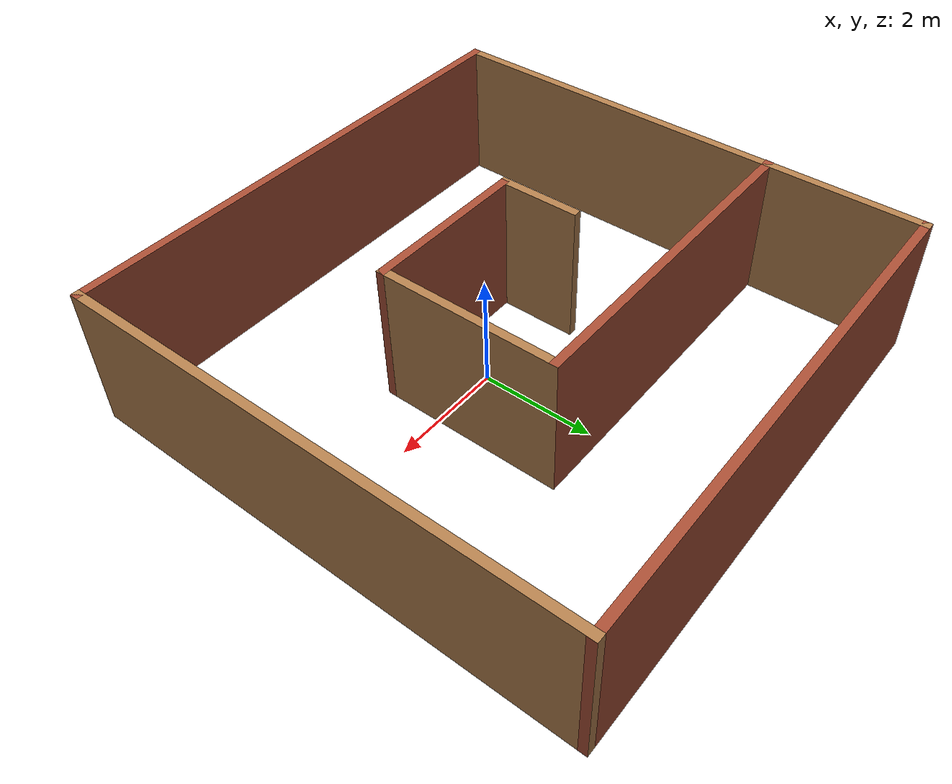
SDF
<?xml version='1.0'?>
<sdf version='1.7'>
  <model name='new_demo'>
    <pose>-0.2996 0.408875 0 0 -0 0</pose>
    <link name='Wall_13'>
      <collision name='Wall_13_Collision'>
        <geometry>
          <box>
            <size>9 0.15 2.5</size>
          </box>
        </geometry>
        <pose>0 0 1.25 0 -0 0</pose>
      </collision>
      <visual name='Wall_13_Visual'>
        <pose>0 0 1.25 0 -0 0</pose>
        <geometry>
          <box>
            <size>9 0.15 2.5</size>
          </box>
        </geometry>
        <material>
          <script>
            <uri>file://media/materials/scripts/gazebo.material</uri>
            <name>Gazebo/Wood</name>
          </script>
          <ambient>1 1 1 1</ambient>
        </material>
        <meta>
          <layer>0</layer>
        </meta>
      </visual>
      <pose>-4.42073 0 0 0 -0 -1.5708</pose>
    </link>
    <link name='Wall_14'>
      <collision name='Wall_14_Collision'>
        <geometry>
          <box>
            <size>9 0.15 2.5</size>
          </box>
        </geometry>
        <pose>0 0 1.25 0 -0 0</pose>
      </collision>
      <visual name='Wall_14_Visual'>
        <pose>0 0 1.25 0 -0 0</pose>
        <geometry>
          <box>
            <size>9 0.15 2.5</size>
          </box>
        </geometry>
        <material>
          <script>
            <uri>file://media/materials/scripts/gazebo.material</uri>
            <name>Gazebo/Bricks</name>
          </script>
          <ambient>1 1 1 1</ambient>
        </material>
        <meta>
          <layer>0</layer>
        </meta>
      </visual>
      <pose>0.004275 -4.425 0 0 -0 0</pose>
    </link>
    <link name='Wall_15'>
      <collision name='Wall_15_Collision'>
        <geometry>
          <box>
            <size>9 0.15 2.5</size>
          </box>
        </geometry>
        <pose>0 0 1.25 0 -0 0</pose>
      </collision>
      <visual name='Wall_15_Visual'>
        <pose>0 0 1.25 0 -0 0</pose>
        <geometry>
          <box>
            <size>9 0.15 2.5</size>
          </box>
        </geometry>
        <material>
          <script>
            <uri>file://media/materials/scripts/gazebo.material</uri>
            <name>Gazebo/Wood</name>
          </script>
          <ambient>1 1 1 1</ambient>
        </material>
        <meta>
          <layer>0</layer>
        </meta>
      </visual>
      <pose>4.42927 0 0 0 -0 1.5708</pose>
    </link>
    <link name='Wall_17'>
      <collision name='Wall_17_Collision'>
        <geometry>
          <box>
            <size>6 0.15 2.5</size>
          </box>
        </geometry>
        <pose>0 0 1.25 0 -0 0</pose>
      </collision>
      <visual name='Wall_17_Visual'>
        <pose>0 0 1.25 0 -0 0</pose>
        <geometry>
          <box>
            <size>6 0.15 2.5</size>
          </box>
        </geometry>
        <material>
          <script>
            <uri>file://media/materials/scripts/gazebo.material</uri>
            <name>Gazebo/Bricks</name>
          </script>
          <ambient>1 1 1 1</ambient>
        </material>
        <meta>
          <layer>0</layer>
        </meta>
      </visual>
      <pose>-1.50428 1.72713 0 0 -0 0</pose>
    </link>
    <link name='Wall_18'>
      <collision name='Wall_18_Collision'>
        <geometry>
          <box>
            <size>3.25 0.15 2.5</size>
          </box>
        </geometry>
        <pose>0 0 1.25 0 -0 0</pose>
      </collision>
      <visual name='Wall_18_Visual'>
        <pose>0 0 1.25 0 -0 0</pose>
        <geometry>
          <box>
            <size>3.25 0.15 2.5</size>
          </box>
        </geometry>
        <material>
          <script>
            <uri>file://media/materials/scripts/gazebo.material</uri>
            <name>Gazebo/Wood</name>
          </script>
          <ambient>1 1 1 1</ambient>
        </material>
        <meta>
          <layer>0</layer>
        </meta>
      </visual>
      <pose>1.42073 0.177125 0 0 -0 -1.5708</pose>
    </link>
    <link name='Wall_19'>
      <collision name='Wall_19_Collision'>
        <geometry>
          <box>
            <size>3 0.15 2.5</size>
          </box>
        </geometry>
        <pose>0 0 1.25 0 -0 0</pose>
      </collision>
      <visual name='Wall_19_Visual'>
        <pose>0 0 1.25 0 -0 0</pose>
        <geometry>
          <box>
            <size>3 0.15 2.5</size>
          </box>
        </geometry>
        <material>
          <script>
            <uri>file://media/materials/scripts/gazebo.material</uri>
            <name>Gazebo/Bricks</name>
          </script>
          <ambient>1 1 1 1</ambient>
        </material>
        <meta>
          <layer>0</layer>
        </meta>
      </visual>
      <pose>-0.004275 -1.37288 0 0 -0 3.14159</pose>
    </link>
    <link name='Wall_20'>
      <collision name='Wall_20_Collision'>
        <geometry>
          <box>
            <size>1.5 0.15 2.5</size>
          </box>
        </geometry>
        <pose>0 0 1.25 0 -0 0</pose>
      </collision>
      <visual name='Wall_20_Visual'>
        <pose>0 0 1.25 0 -0 0</pose>
        <geometry>
          <box>
            <size>1.5 0.15 2.5</size>
          </box>
        </geometry>
        <material>
          <script>
            <uri>file://media/materials/scripts/gazebo.material</uri>
            <name>Gazebo/Wood</name>
          </script>
          <ambient>1 1 1 1</ambient>
        </material>
        <meta>
          <layer>0</layer>
        </meta>
      </visual>
      <pose>-1.42928 -0.697875 0 0 -0 1.5708</pose>
    </link>
    <link name='Wall_9'>
      <collision name='Wall_9_Collision'>
        <geometry>
          <box>
            <size>9 0.15 2.5</size>
          </box>
        </geometry>
        <pose>0 0 1.25 0 -0 0</pose>
      </collision>
      <visual name='Wall_9_Visual'>
        <pose>0 0 1.25 0 -0 0</pose>
        <geometry>
          <box>
            <size>9 0.15 2.5</size>
          </box>
        </geometry>
        <material>
          <script>
            <uri>file://media/materials/scripts/gazebo.material</uri>
            <name>Gazebo/Bricks</name>
          </script>
          <ambient>1 1 1 1</ambient>
        </material>
        <meta>
          <layer>0</layer>
        </meta>
      </visual>
      <pose>0.004275 4.425 0 0 -0 3.14159</pose>
    </link>
    <static>1</static>
  </model>
</sdf>
